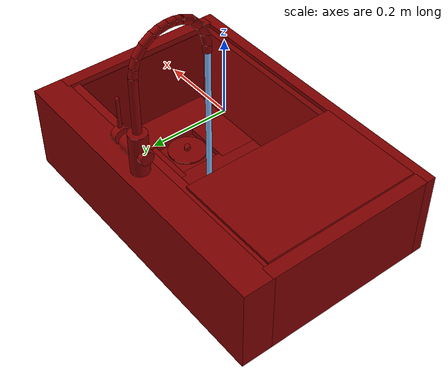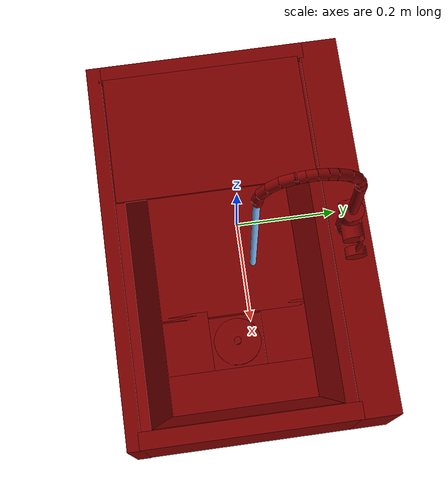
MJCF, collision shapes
<mujoco model="model">
  <compiler angle="radian"/>
  <asset>
    <mesh file="visuals/handle.obj" name="handle_vis"/>
    <mesh file="visuals/Body001.obj" name="Body001_vis"/>
    <mesh file="visuals/Funnel001.obj" name="Funnel001_vis"/>
    <mesh file="visuals/Shelf001.obj" name="Shelf001_vis"/>
    <mesh file="visuals/spout.obj" name="spout_vis"/>
    <texture file="visuals/T_BC001.png" name="Body001_material" type="2d"/>
    <material name="Body001_material" rgba="1 1 1 1.0" texture="Body001_material" shininess="0.5" specular="0.3103448502657381"/>
    <texture file="visuals/T_BC001.png" name="handle_material" type="2d"/>
    <material name="handle_material" rgba="1 1 1 1.0" texture="handle_material" shininess="0.5" specular="0.3103448502657381"/>
    <texture file="visuals/T_BC001.png" name="Funnel001_material" type="2d"/>
    <material name="Funnel001_material" rgba="1 1 1 1.0" texture="Funnel001_material" shininess="0.5" specular="0.3103448502657381"/>
    <texture file="visuals/T_BC001.png" name="Shelf001_material" type="2d"/>
    <material name="Shelf001_material" rgba="1 1 1 1.0" texture="Shelf001_material" shininess="0.5" specular="0.3103448502657381"/>
    <texture file="visuals/T_BC001.png" name="spout_material" type="2d"/>
    <material name="spout_material" rgba="1 1 1 1.0" texture="spout_material" shininess="0.5" specular="0.3103448502657381"/>
  </asset>
  <default>
    <default class="visual">
      <geom conaffinity="0" contype="0" group="1" type="mesh"/>
    </default>
    <default class="collision">
      <geom group="0" rgba="0.5 0 0 0.5"/>
    </default>
    <default class="spawn">
      <geom group="0" rgba="1 1 1 0.5" contype="0" conaffinity="0"/>
      <site group="0" rgba="1 1 1 0.5"/>
    </default>
    <default class="region">
      <geom group="1" conaffinity="0" contype="0" rgba="0 1 0 0"/>
    </default>
  </default>
  <worldbody>
    <body>
      <body name="object">
        <geom mesh="Body001_vis" type="mesh" solimp="0.998 0.998 0.001" solref="0.001 1" density="100" friction="0.95 0.3 0.1" class="visual" material="Body001_material"/>
        <geom class="collision" type="cylinder" pos="0.014467805624008179 0.23216578364372253 -0.011442810297012329" size="0.023818261921405792 0.058100372552871704" quat="1.0 0.0 0.0 0.0"/>
        <geom class="collision" type="cylinder" pos="-0.009128757752478123 0.23109778761863708 -0.008790910243988037" size="0.017742056399583817 0.010086488910019398" quat="0.7071068286895752 -0.0 0.7071067690849304 0.0"/>
        <geom class="collision" type="box" pos="0.0003143745707347989 -0.26393282413482666 -0.18425995111465454" size="0.4193645417690277 0.015467116609215736 0.11856171488761902" quat="7.549790126404332e-08 0.0 0.0 1.0"/>
        <geom class="collision" type="box" pos="-1.2165401130914688e-08 0.2376115918159485 -0.18426010012626648" size="0.4190501272678375 0.04178816080093384 0.11856158077716827" quat="7.549790126404332e-08 0.0 0.0 1.0"/>
        <geom class="collision" type="box" pos="-0.4007223844528198 -0.025999724864959717 -0.1842600703239441" size="0.018327679485082626 0.22813750803470612 0.11856182664632797" quat="1.0 0.0 0.0 0.0"/>
        <geom class="collision" type="box" pos="0.40077850222587585 -0.025999724864959717 -0.1842600703239441" size="0.018271517008543015 0.22813750803470612 0.11856184154748917" quat="1.0 0.0 0.0 0.0"/>
        <geom class="collision" type="box" pos="0.00022717555111739784 -0.22428683936595917 -0.1782275140285492" size="0.3873293101787567 0.01631571352481842 0.10411050915718079" quat="7.645235911013515e-08 6.835321642029157e-09 -0.09209904074668884 0.995749831199646"/>
        <geom class="collision" type="box" pos="0.00022717546380590647 0.1705063432455063 -0.1745540350675583" size="0.3873293101787567 0.017418405041098595 0.10019877552986145" quat="7.620395336971342e-08 -5.913063816365138e-09 0.07906337827444077 0.9968695640563965"/>
        <geom class="collision" type="box" pos="-0.13379311561584473 -0.025999724864959717 -0.2883426547050476" size="0.2625048756599426 0.22813750803470612 0.014479254372417927" quat="1.0 0.0 0.0 0.0"/>
        <geom class="collision" type="box" pos="0.3236698806285858 -0.025999724864959717 -0.28733915090560913" size="0.07233939319849014 0.22813750803470612 0.015482766553759575" quat="1.0 0.0 0.0 0.0"/>
        <geom class="collision" type="box" pos="0.1869988590478897 0.11869826912879944 -0.2883426547050476" size="0.07233939319849014 0.08343951404094696 0.014479254372417927" quat="1.0 0.0 0.0 0.0"/>
        <geom class="collision" type="box" pos="0.3782345652580261 -0.02599972113966942 -0.17547392845153809" size="0.018271517008543015 0.22813750803470612 0.09256541728973389" quat="0.9945106506347656 4.444838213243647e-16 0.10463552922010422 1.4058707087372113e-08"/>
        <geom class="collision" type="box" pos="-0.38114434480667114 -0.02599971927702427 -0.16792505979537964" size="0.018327679485082626 0.22813750803470612 0.09352923184633255" quat="0.9962621331214905 -2.974396163650674e-16 -0.0863814726471901 -1.16061142918511e-08"/>
        <geom class="collision" type="box" pos="0.1869988590478897 -0.16822560131549835 -0.2883426547050476" size="0.07233939319849014 0.08343951404094696 0.014479254372417927" quat="1.0 0.0 0.0 0.0"/>
        <geom class="collision" type="cylinder" pos="0.04004034027457237 0.2328297197818756 -0.008022322319447994" size="0.02268277481198311 0.022398056462407112" quat="0.7071068286895752 -0.0 0.7071067690849304 0.0"/>
        <geom class="collision" type="box" pos="0.19035212695598602 -0.024247054010629654 -0.2966359257698059" size="0.061352916061878204 0.060629572719335556 0.0061859916895627975" quat="1.0 0.0 0.0 0.0"/>
        <body name="handle">
          <joint axis="1.0 0.0 0.0" pos="0.080992192029953 0.23273900151252747 -0.008228957653045654" limited="true" name="handle_joint_hinge_0" type="hinge" range="-0.7853981633974483 0.7853981633974483" damping="1" frictionloss="1" armature=".01" stiffness="0.05"/>
          <joint axis="0.0 1.0 0.0" pos="0.080992192029953 0.23273900151252747 -0.008228957653045654" limited="true" name="handle_joint_hinge_1" type="hinge" range="0.0 0.17453292519943295" damping="1" frictionloss="1" armature=".01" stiffness="0.05"/>
          <geom mesh="handle_vis" type="mesh" solimp="0.998 0.998 0.001" solref="0.001 1" density="100" friction="0.95 0.3 0.1" class="visual" material="handle_material"/>
          <geom class="collision" type="cylinder" pos="0.08792079985141754 0.23210713267326355 -0.008101731538772583" size="0.021927855908870697 0.009958228096365929" quat="0.70710688829422 -4.7503021960437763e-08 -0.7071066498756409 -4.750300774958305e-08"/>
          <geom class="collision" type="cylinder" pos="0.08904275298118591 0.23186609148979187 0.055441200733184814" size="0.004649974871426821 0.04207927733659744" quat="7.549790126404332e-08 0.0 0.0 1.0"/>
        </body>
        <body name="Funnel001">
          <joint axis="0.0 0.0 1.0" pos="0.19233739376068115 -0.024947434663772583 -0.2692074179649353" limited="true" name="Funnel001_joint" range="0.0 0.1" type="slide" damping="1" frictionloss="1" armature=".01" stiffness="0.05"/>
          <geom mesh="Funnel001_vis" type="mesh" solimp="0.998 0.998 0.001" solref="0.001 1" density="100" friction="0.95 0.3 0.1" class="visual" material="Funnel001_material"/>
          <geom class="collision" type="cylinder" pos="0.1920093297958374 -0.024995192885398865 -0.27499544620513916" size="0.053283076733350754 0.0024267947301268578" quat="1.0 0.0 0.0 0.0"/>
          <geom class="collision" type="cylinder" pos="0.1920093297958374 -0.024995192885398865 -0.2643439769744873" size="0.00820619985461235 0.005855671130120754" quat="1.0 0.0 0.0 0.0"/>
        </body>
        <body name="Shelf001">
          <joint axis="0.0 0.0 1.0" pos="-0.24271366000175476 -0.03029051423072815 -0.06434102356433868" limited="true" name="Shelf001_joint" range="0.0 0.1" type="slide" damping="1" frictionloss="1" armature=".01" stiffness="0.05"/>
          <geom mesh="Shelf001_vis" type="mesh" solimp="0.998 0.998 0.001" solref="0.001 1" density="100" friction="0.95 0.3 0.1" class="visual" material="Shelf001_material"/>
          <geom class="collision" type="box" pos="-0.24190324544906616 -0.028895139694213867 -0.060547225177288055" size="0.14196902513504028 0.21602289378643036 0.00306933862157166" quat="1.0 0.0 0.0 0.0"/>
        </body>
        <body name="spout">
          <joint axis="0.0 0.0 1.0" pos="0.01468697190284729 0.23260828852653503 0.17442181706428528" limited="true" name="spout_joint" range="-1.0471975511965976 1.0471975511965976" type="hinge" damping="1" frictionloss="1" armature=".01" stiffness="0.05"/>
          <site type="cylinder" rgba="0.5 0.75 1 1" size="0.007177439983934164 0.22816672921180725" pos="0.014867302030324936 0.03498653322458267 -0.043978501111269" name="water"/>
          <geom mesh="spout_vis" type="mesh" solimp="0.998 0.998 0.001" solref="0.001 1" density="100" friction="0.95 0.3 0.1" class="visual" material="spout_material"/>
          <geom class="collision" type="cylinder" pos="0.014535695314407349 0.23237505555152893 0.12434826046228409" size="0.010794290341436863 0.07506126910448074" quat="1.0 0.0 0.0 0.0"/>
          <geom class="collision" type="cylinder" pos="0.014798551797866821 0.22935500741004944 0.21041113138198853" size="0.010841227136552334 0.012862671166658401" quat="0.9968740940093994 0.0790063813328743 1.7542944038336892e-17 -4.5949226852819725e-24"/>
          <geom class="collision" type="cylinder" pos="0.014498025178909302 0.22364851832389832 0.2333473265171051" size="0.010841227136552334 0.01286267302930355" quat="0.9837262034416199 0.17967408895492554 3.989565878853892e-17 -2.8741391747410816e-24"/>
          <geom class="collision" type="cylinder" pos="0.014498025178909302 0.21097233891487122 0.25525936484336853" size="0.010841227136552334 0.01631930097937584" quat="0.9403983950614929 0.34007471799850464 1.0998129235289522e-16 2.0087690746601152e-17"/>
          <geom class="collision" type="cylinder" pos="0.014498025178909302 0.18952593207359314 0.27546486258506775" size="0.010841227136552334 0.01631930284202099" quat="0.881496250629425 0.47219106554985046 1.2380990592765462e-16 3.0933881461743464e-17"/>
          <geom class="collision" type="cylinder" pos="0.014498025178909302 0.1685064435005188 0.28649571537971497" size="0.010841227136552334 0.01080181635916233" quat="0.8340665698051453 0.5516638159751892 4.176387928921444e-17 2.0189935564268627e-16"/>
          <geom class="collision" type="cylinder" pos="0.014498025178909302 0.15044385194778442 0.29187795519828796" size="0.010841227136552334 0.01080181635916233" quat="0.7745123505592346 0.6325587630271912 3.9877794996030227e-17 1.9278140330751835e-16"/>
          <geom class="collision" type="cylinder" pos="0.014498025178909302 0.13080185651779175 0.2937973439693451" size="0.010841227136552334 0.01080181635916233" quat="0.7095870971679688 0.7046177387237549 3.767462590427484e-17 1.8213058603561616e-16"/>
          <geom class="collision" type="cylinder" pos="0.014498025178909302 0.11203929781913757 0.29191020131111145" size="0.010841227136552334 0.01080181635916233" quat="0.6383018493652344 0.7697861790657043 2.4664484384579504e-17 1.8156852673555373e-16"/>
          <geom class="collision" type="cylinder" pos="0.014498025178909302 0.09178677201271057 0.28537222743034363" size="0.010841227136552334 0.017336048185825348" quat="0.557436466217041 0.8302196264266968 3.211736846879248e-17 1.552649641148657e-16"/>
          <geom class="collision" type="cylinder" pos="0.014498025178909302 0.06760498881340027 0.2681911885738373" size="0.010841227136552334 0.017336048185825348" quat="0.36648058891296387 0.9304257035255432 1.898018358753758e-17 1.3208991768486143e-16"/>
          <geom class="collision" type="cylinder" pos="0.014498025178909302 0.04904147982597351 0.24233654141426086" size="0.010841227136552334 0.017336048185825348" quat="0.25571370124816895 0.9667525291442871 2.0071699690999277e-17 9.70322099972961e-17"/>
          <geom class="collision" type="cylinder" pos="0.014498025178909302 0.03920599818229675 0.21377325057983398" size="0.010841227136552334 0.017336048185825348" quat="0.10857351869344711 0.9940884113311768 1.3839796229460509e-17 6.690520682715116e-17"/>
          <geom class="collision" type="cylinder" pos="0.014498025178909302 0.03629767894744873 0.1898207813501358" size="0.010841227136552334 0.010712708346545696" quat="1.0 1.3665806921110431e-33 -6.500693981790527e-17 2.1022070657818602e-17"/>
        </body>
        <geom class="region" name="reg_main" type="box" pos="-7.450580596923828e-09 0.0 -0.1842600703239441" size="0.4190501272678375 0.2794000208377838 0.11856183409690857"/>
        <geom class="region" name="reg_basin" type="box" pos="0.14008934795856476 -0.030044429004192352 -0.1714528203010559" size="0.24243323504924774 0.19861436635255814 0.10128641128540039"/>
      </body>
    </body>
  </worldbody>
  <actuator>
    <motor name="handle_joint_hinge_0_actuator" joint="handle_joint_hinge_0" gear="10"/>
    <motor name="handle_joint_hinge_1_actuator" joint="handle_joint_hinge_1" gear="10"/>
    <motor name="Funnel001_joint_actuator" joint="Funnel001_joint" gear="10"/>
    <motor name="Shelf001_joint_actuator" joint="Shelf001_joint" gear="10"/>
    <motor name="spout_joint_actuator" joint="spout_joint" gear="10"/>
  </actuator>
</mujoco>
